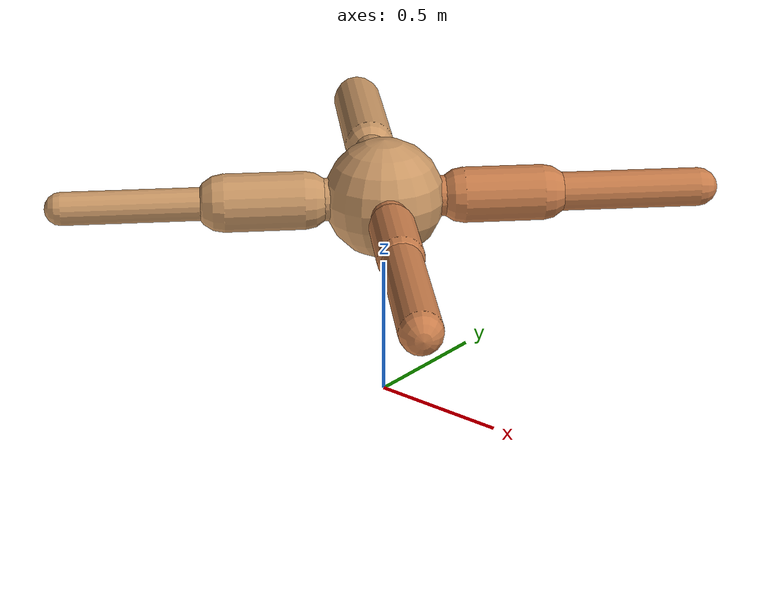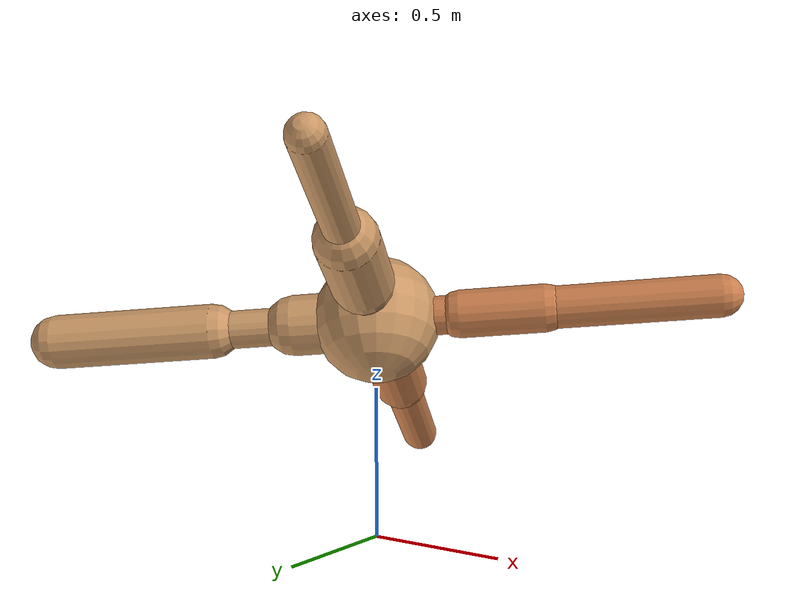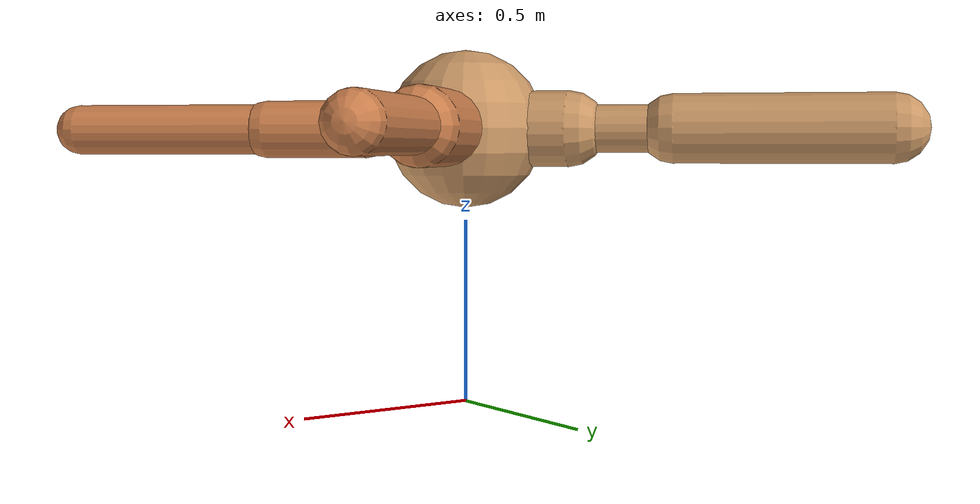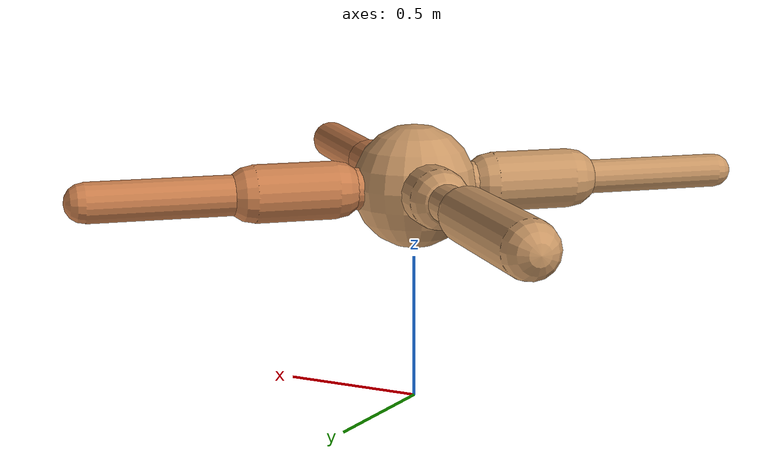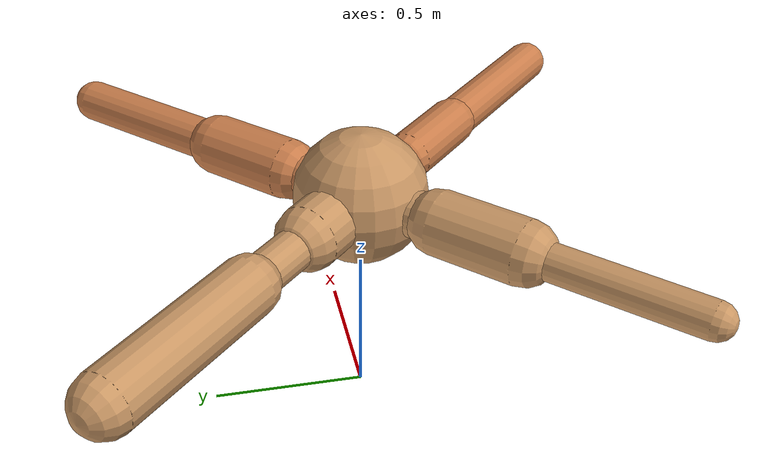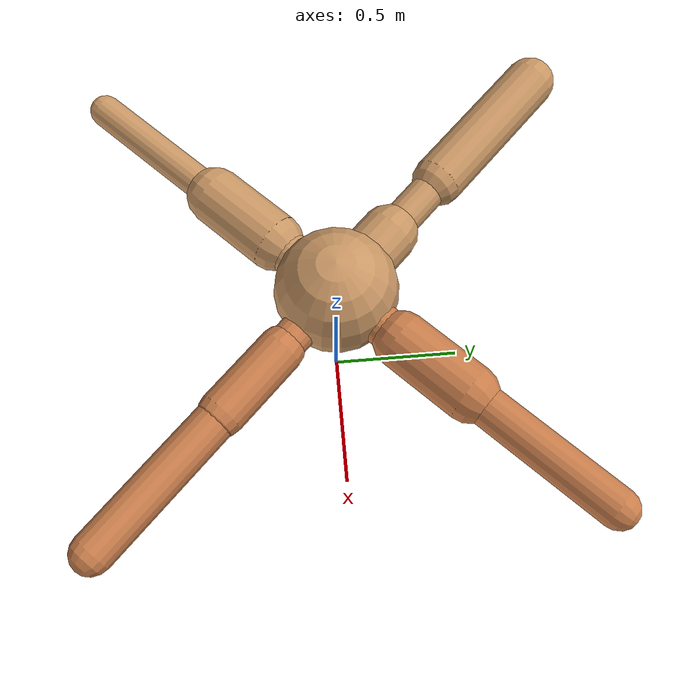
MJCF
<?xml version="1.0" encoding="utf-8"?>
<mujoco model="ant">
	<compiler angle="degree" coordinate="local" inertiafromgeom="true"></compiler>
	<option integrator="RK4" timestep="0.01"></option>
	<custom>
		<numeric data="0.0 0.0 0.55 1.0 0.0 0.0 0.0 0.0 1.0 0.0 -1.0 0.0 -1.0 0.0 1.0" name="init_qpos"></numeric>
	</custom>
	<default>
		<joint armature="1" damping="1.2261280056146624" limited="true"></joint>
		<geom conaffinity="0" condim="3" density="5.0" friction="1.7988421813846411 0.10565460665733846 0.11661484461858707" margin="0.01" rgba="0.8 0.6 0.4 1"></geom>
	</default>
	<worldbody>
		<body name="torso" pos="0 0 0.75">
			<geom name="torso_geom" pos="0 0 0" size="0.21464441711867424" type="sphere"></geom>
			<body name="front_left_leg" pos="0 0 0">
				<geom fromto="0.0 0.0 0.0 0.2 0.2 0.0" name="aux_1_geom" size="0.07240944201155149" type="capsule" rgba=".8 .5 .3 1"></geom>
				<body name="aux_1" pos="0.2 0.2 0">
					<joint axis="0 0 1" name="hip_1" pos="0.0 0.0 0.0" range="-40 40" type="hinge"></joint>
					<geom fromto="0.0 0.0 0.0 0.2 0.2 0.0" name="left_leg_geom" size="0.09947570521162004" type="capsule" rgba=".8 .5 .3 1"></geom>
					<body pos="0.2 0.2 0" name="front_left_foot">
						<joint axis="-1 1 0" name="ankle_1" pos="0.0 0.0 0.0" range="30 100" type="hinge"></joint>
						<geom fromto="0.0 0.0 0.0 0.4 0.4 0.0" name="left_ankle_geom" size="0.06916054450378387" type="capsule" rgba=".8 .5 .3 1"></geom>
					</body>
				</body>
			</body>
			<body name="front_right_leg" pos="0 0 0">
				<geom fromto="0.0 0.0 0.0 -0.2 0.2 0.0" name="aux_2_geom" size="0.10343663109061516" type="capsule"></geom>
				<body name="aux_2" pos="-0.2 0.2 0">
					<joint axis="0 0 1" name="hip_2" pos="0.0 0.0 0.0" range="-40 40" type="hinge"></joint>
					<geom fromto="0.0 0.0 0.0 -0.2 0.2 0.0" name="right_leg_geom" size="0.06507169012333269" type="capsule"></geom>
					<body pos="-0.2 0.2 0" name="front_right_foot">
						<joint axis="1 1 0" name="ankle_2" pos="0.0 0.0 0.0" range="-100 -30" type="hinge"></joint>
						<geom fromto="0.0 0.0 0.0 -0.4 0.4 0.0" name="right_ankle_geom" size="0.09388545528402896" type="capsule"></geom>
					</body>
				</body>
			</body>
			<body name="left_back_leg" pos="0 0 0">
				<geom fromto="0.0 0.0 0.0 -0.2 -0.2 0.0" name="aux_3_geom" size="0.07583667823670537" type="capsule"></geom>
				<body name="aux_3" pos="-0.2 -0.2 0">
					<joint axis="0 0 1" name="hip_3" pos="0.0 0.0 0.0" range="-40 40" type="hinge"></joint>
					<geom fromto="0.0 0.0 0.0 -0.2 -0.2 0.0" name="back_leg_geom" size="0.10373013560918488" type="capsule"></geom>
					<body pos="-0.2 -0.2 0" name="left_back_foot">
						<joint axis="-1 1 0" name="ankle_3" pos="0.0 0.0 0.0" range="-100 -30" type="hinge"></joint>
						<geom fromto="0.0 0.0 0.0 -0.4 -0.4 0.0" name="third_ankle_geom" size="0.05898659835034059" type="capsule"></geom>
					</body>
				</body>
			</body>
			<body name="right_back_leg" pos="0 0 0">
				<geom fromto="0.0 0.0 0.0 0.2 -0.2 0.0" name="aux_4_geom" size="0.06543368649966676" type="capsule" rgba=".8 .5 .3 1"></geom>
				<body name="aux_4" pos="0.2 -0.2 0">
					<joint axis="0 0 1" name="hip_4" pos="0.0 0.0 0.0" range="-40 40" type="hinge"></joint>
					<geom fromto="0.0 0.0 0.0 0.2 -0.2 0.0" name="rightback_leg_geom" size="0.08068229922121858" type="capsule" rgba=".8 .5 .3 1"></geom>
					<body pos="0.2 -0.2 0" name="right_back_foot">
						<joint axis="1 1 0" name="ankle_4" pos="0.0 0.0 0.0" range="30 100" type="hinge"></joint>
						<geom fromto="0.0 0.0 0.0 0.4 -0.4 0.0" name="fourth_ankle_geom" size="0.07092827126737757" type="capsule" rgba=".8 .5 .3 1"></geom>
					</body>
				</body>
			</body>
		</body>
	</worldbody>
	<actuator>
		<motor ctrllimited="true" ctrlrange="-1.0 1.0" joint="hip_4" gear="150"></motor>
		<motor ctrllimited="true" ctrlrange="-1.0 1.0" joint="ankle_4" gear="150"></motor>
		<motor ctrllimited="true" ctrlrange="-1.0 1.0" joint="hip_1" gear="150"></motor>
		<motor ctrllimited="true" ctrlrange="-1.0 1.0" joint="ankle_1" gear="150"></motor>
		<motor ctrllimited="true" ctrlrange="-1.0 1.0" joint="hip_2" gear="150"></motor>
		<motor ctrllimited="true" ctrlrange="-1.0 1.0" joint="ankle_2" gear="150"></motor>
		<motor ctrllimited="true" ctrlrange="-1.0 1.0" joint="hip_3" gear="150"></motor>
		<motor ctrllimited="true" ctrlrange="-1.0 1.0" joint="ankle_3" gear="150"></motor>
	</actuator>
</mujoco>
